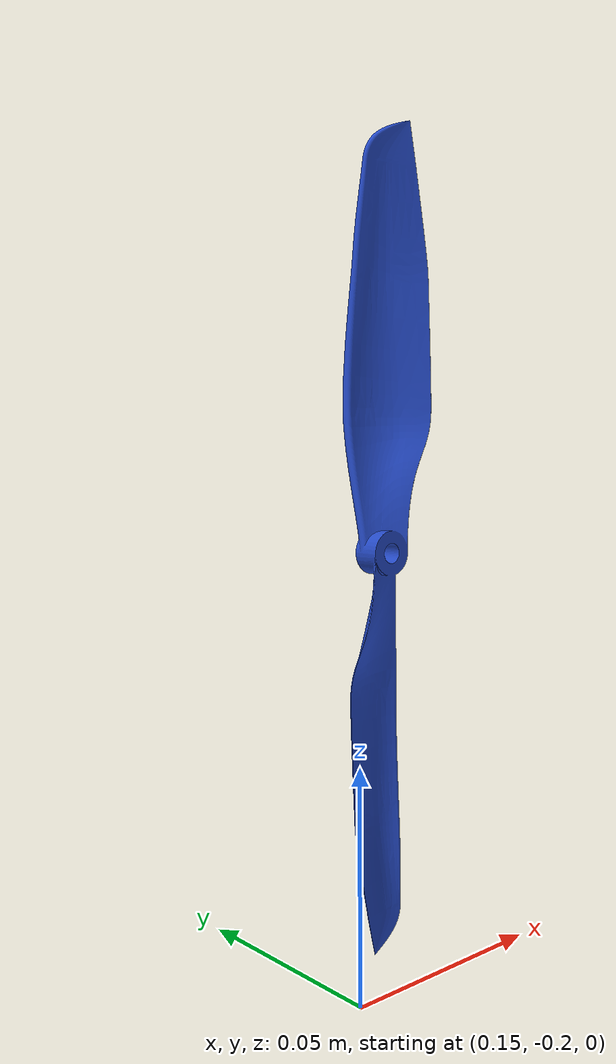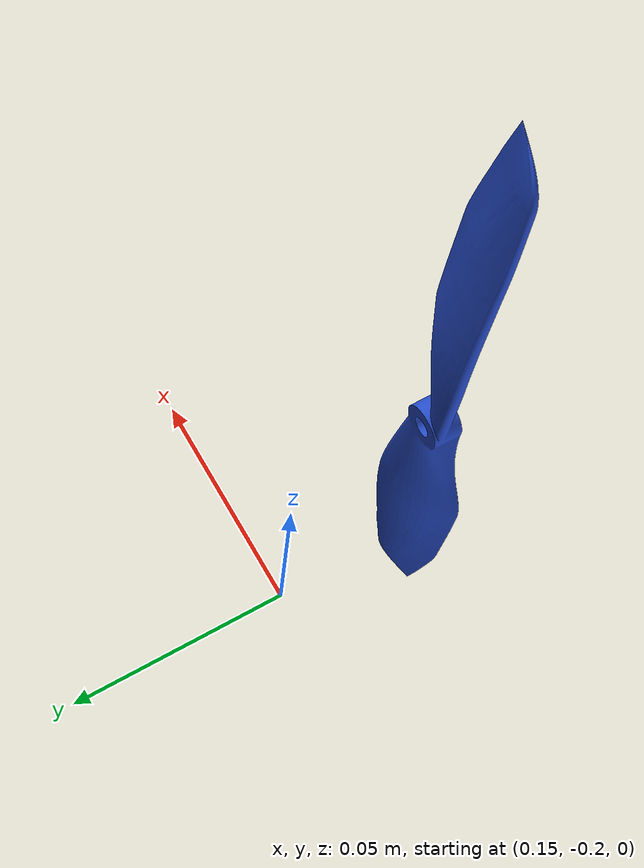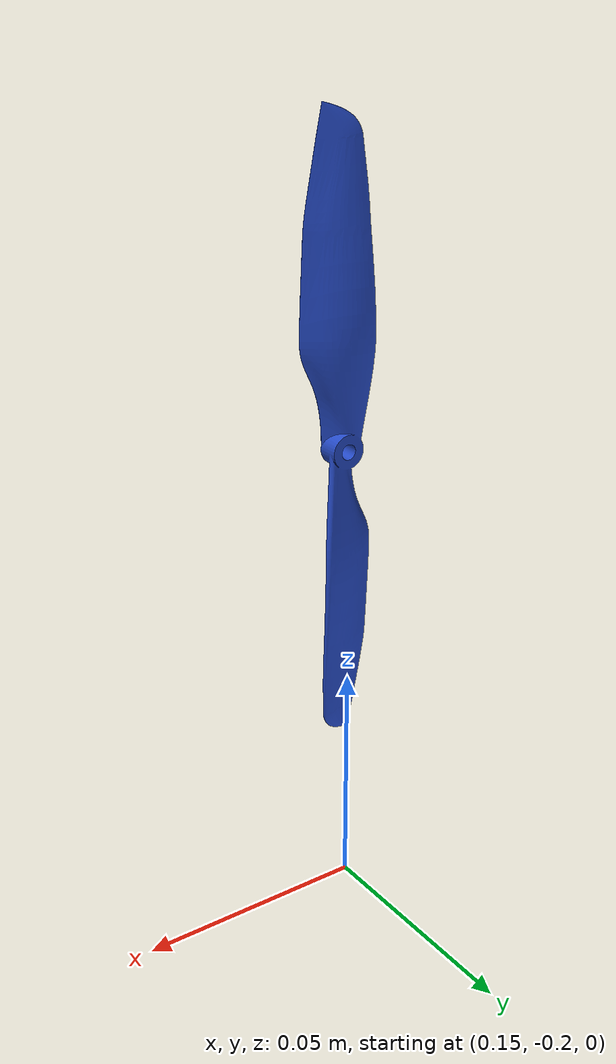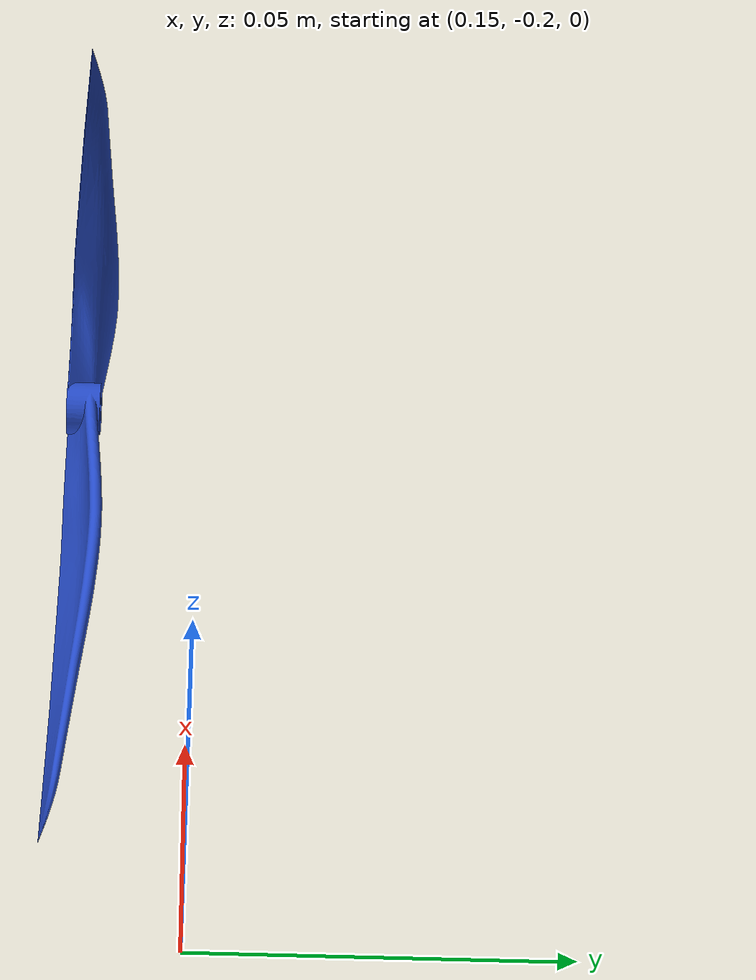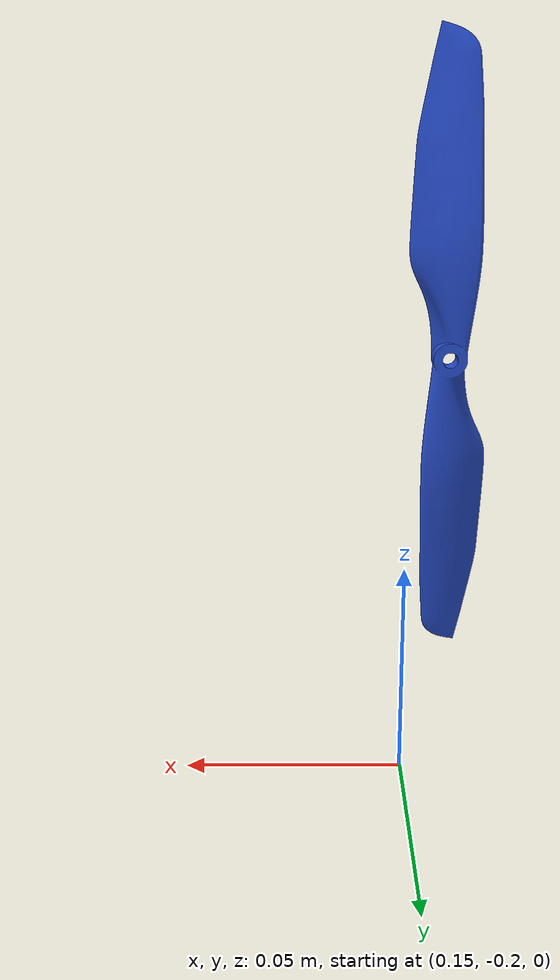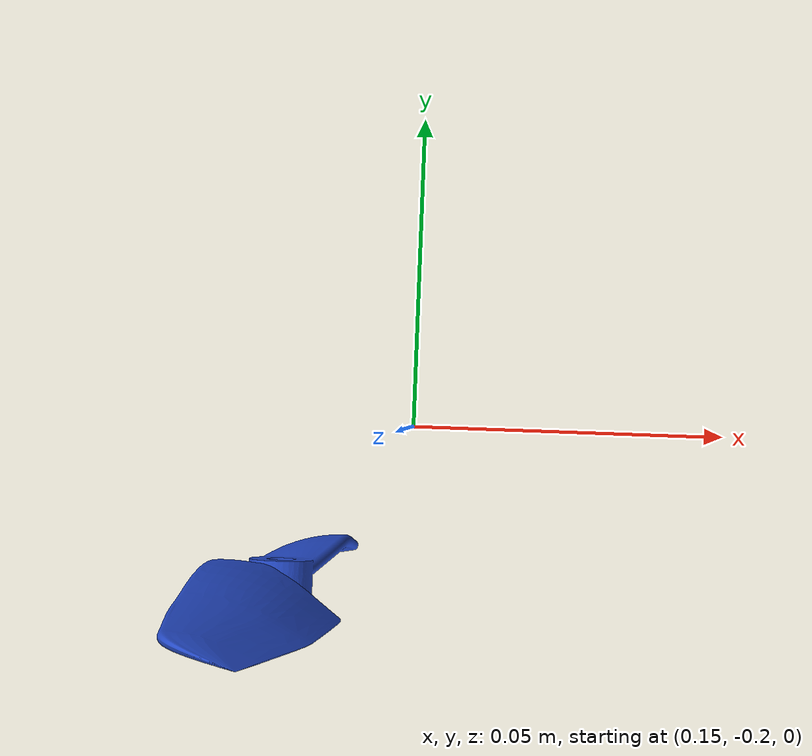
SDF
<sdf version='1.6'>
  <model name='modular_test'>
    <link name='rotor_0'>
      <pose frame=''>0.13 -0.22 0.023 0 -0 0</pose>
      <inertial>
        <pose frame=''>0 0 0 0 -0 0</pose>
        <mass>0.005</mass>
        <inertia>
          <ixx>9.75e-07</ixx>
          <ixy>0</ixy>
          <ixz>0</ixz>
          <iyy>0.000273104</iyy>
          <iyz>0</iyz>
          <izz>0.000274004</izz>
        </inertia>
      </inertial>
      <collision name='rotor_0_collision'>
        <pose frame=''>0 0 0 0 -0 0</pose>
        <geometry>
          <cylinder>
            <length>0.005</length>
            <radius>0.128</radius>
          </cylinder>
        </geometry>
        <surface>
          <contact>
            <ode/>
          </contact>
          <friction>
            <ode/>
          </friction>
        </surface>
      </collision>
      <visual name='rotor_0_visual'>
        <pose frame=''>0 0 0 0 -0 0</pose>
        <geometry>
          <mesh>
            <scale>0.001 0.001 0.001</scale>
            <uri>model://modular_description/meshes/PROPELLER.STL</uri>
          </mesh>
        </geometry>
        <material>
          <script>
            <name>Gazebo/Blue</name>
            <uri>file://media/materials/scripts/gazebo.material</uri>
          </script>
        </material>
      </visual>
      <gravity>1</gravity>
      <velocity_decay/>
    </link>
  </model>
</sdf>
